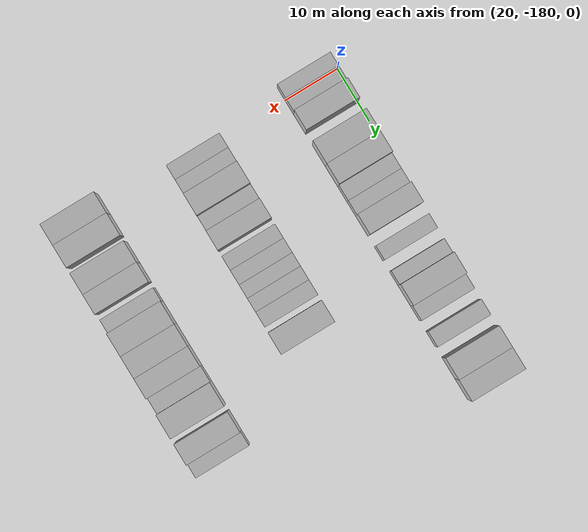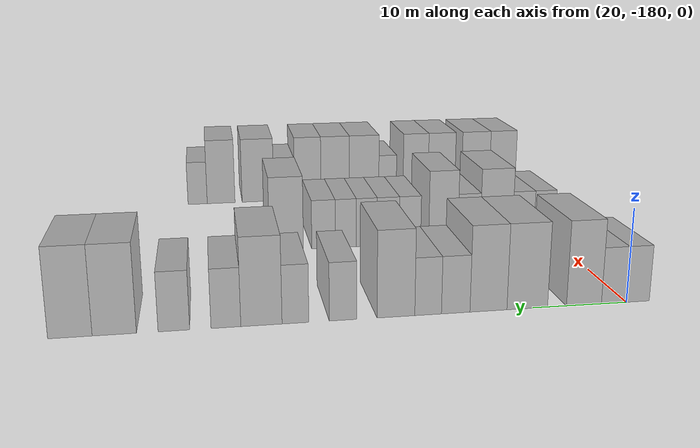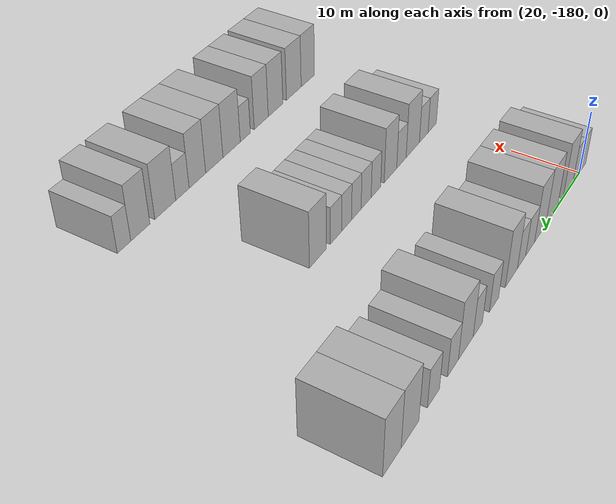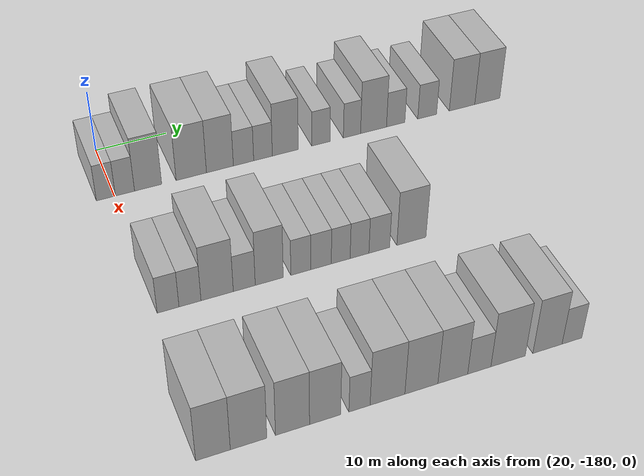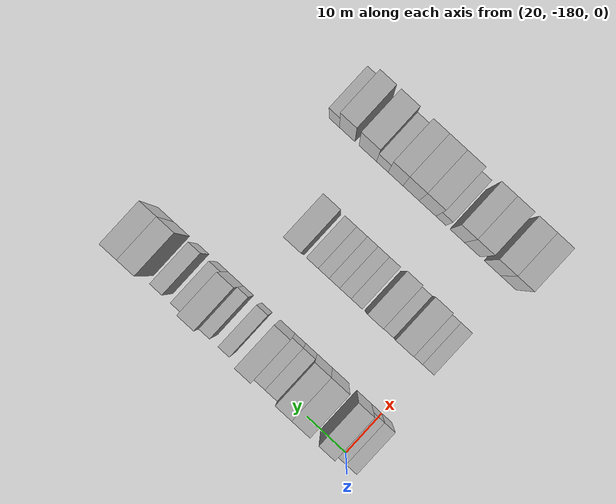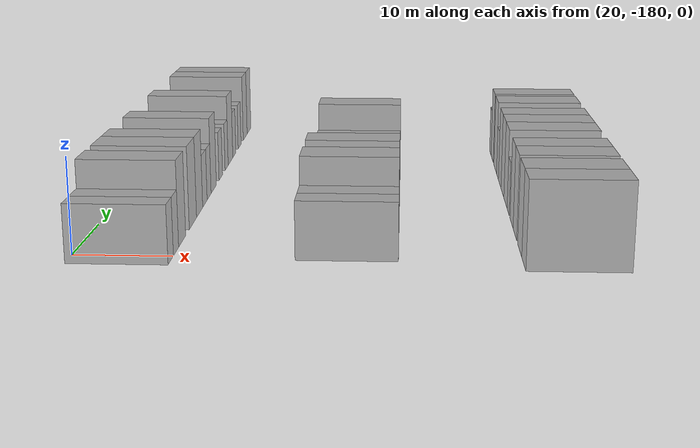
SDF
<sdf version="1.6">
 <world name="default">
  <model name="building_51">
   <static>1</static>
   <pose>25.0000 -181.1678 0 0.000000 0.000000 0.000000</pose>
   <link name="link">
    <pose>0 0 3.00 0 0 0</pose>
    <collision name="collision"><geometry><box><size>10.0000 2.5690 6.0000</size></box></geometry></collision>
    <visual name="visual">
     <cast_shadows>0</cast_shadows>
     <geometry><box><size>10.0000 2.5690 6.0000</size></box></geometry>
     <material>
      <script>
       <uri>model://HANNAS_wall/materials/scripts</uri>
       <uri>model://HANNAS_wall/materials/textures</uri>
       <name>vrc/HANNAS_wall</name>
      </script>
     </material>
    </visual>
   </link>
  </model>
  <model name="building_52">
   <static>1</static>
   <pose>25.0000 -178.5773 0 0.000000 0.000000 0.000000</pose>
   <link name="link">
    <pose>0 0 3.00 0 0 0</pose>
    <collision name="collision"><geometry><box><size>10.0000 2.6120 6.0000</size></box></geometry></collision>
    <visual name="visual">
     <cast_shadows>0</cast_shadows>
     <geometry><box><size>10.0000 2.6120 6.0000</size></box></geometry>
     <material>
      <script>
       <uri>model://HANNAS_wall/materials/scripts</uri>
       <uri>model://HANNAS_wall/materials/textures</uri>
       <name>vrc/HANNAS_wall</name>
      </script>
     </material>
    </visual>
   </link>
  </model>
  <model name="building_53">
   <static>1</static>
   <pose>25.0000 -175.4049 0 0.000000 0.000000 0.000000</pose>
   <link name="link">
    <pose>0 0 4.50 0 0 0</pose>
    <collision name="collision"><geometry><box><size>10.0000 3.7328 9.0000</size></box></geometry></collision>
    <visual name="visual">
     <cast_shadows>0</cast_shadows>
     <geometry><box><size>10.0000 3.7328 9.0000</size></box></geometry>
     <material>
      <script>
       <uri>model://HANNAS_wall/materials/scripts</uri>
       <uri>model://HANNAS_wall/materials/textures</uri>
       <name>vrc/HANNAS_wall</name>
      </script>
     </material>
    </visual>
   </link>
  </model>
  <model name="building_54">
   <static>1</static>
   <pose>25.0000 -169.4101 0 0.000000 0.000000 0.000000</pose>
   <link name="link">
    <pose>0 0 4.50 0 0 0</pose>
    <collision name="collision"><geometry><box><size>10.0000 4.2567 9.0000</size></box></geometry></collision>
    <visual name="visual">
     <cast_shadows>0</cast_shadows>
     <geometry><box><size>10.0000 4.2567 9.0000</size></box></geometry>
     <material>
      <script>
       <uri>model://HANNAS_wall/materials/scripts</uri>
       <uri>model://HANNAS_wall/materials/textures</uri>
       <name>vrc/HANNAS_wall</name>
      </script>
     </material>
    </visual>
   </link>
  </model>
  <model name="building_55">
   <static>1</static>
   <pose>25.0000 -165.3705 0 0.000000 0.000000 0.000000</pose>
   <link name="link">
    <pose>0 0 4.50 0 0 0</pose>
    <collision name="collision"><geometry><box><size>10.0000 3.8225 9.0000</size></box></geometry></collision>
    <visual name="visual">
     <cast_shadows>0</cast_shadows>
     <geometry><box><size>10.0000 3.8225 9.0000</size></box></geometry>
     <material>
      <script>
       <uri>model://HANNAS_wall/materials/scripts</uri>
       <uri>model://HANNAS_wall/materials/textures</uri>
       <name>vrc/HANNAS_wall</name>
      </script>
     </material>
    </visual>
   </link>
  </model>
  <model name="building_56">
   <static>1</static>
   <pose>25.0000 -162.0023 0 0.000000 0.000000 0.000000</pose>
   <link name="link">
    <pose>0 0 3.00 0 0 0</pose>
    <collision name="collision"><geometry><box><size>10.0000 2.9139 6.0000</size></box></geometry></collision>
    <visual name="visual">
     <cast_shadows>0</cast_shadows>
     <geometry><box><size>10.0000 2.9139 6.0000</size></box></geometry>
     <material>
      <script>
       <uri>model://HANNAS_wall/materials/scripts</uri>
       <uri>model://HANNAS_wall/materials/textures</uri>
       <name>vrc/HANNAS_wall</name>
      </script>
     </material>
    </visual>
   </link>
  </model>
  <model name="building_57">
   <static>1</static>
   <pose>25.0000 -159.1965 0 0.000000 0.000000 0.000000</pose>
   <link name="link">
    <pose>0 0 3.00 0 0 0</pose>
    <collision name="collision"><geometry><box><size>10.0000 2.6977 6.0000</size></box></geometry></collision>
    <visual name="visual">
     <cast_shadows>0</cast_shadows>
     <geometry><box><size>10.0000 2.6977 6.0000</size></box></geometry>
     <material>
      <script>
       <uri>model://HANNAS_wall/materials/scripts</uri>
       <uri>model://HANNAS_wall/materials/textures</uri>
       <name>vrc/HANNAS_wall</name>
      </script>
     </material>
    </visual>
   </link>
  </model>
  <model name="building_58">
   <static>1</static>
   <pose>25.0000 -155.9564 0 0.000000 0.000000 0.000000</pose>
   <link name="link">
    <pose>0 0 4.50 0 0 0</pose>
    <collision name="collision"><geometry><box><size>10.0000 3.7825 9.0000</size></box></geometry></collision>
    <visual name="visual">
     <cast_shadows>0</cast_shadows>
     <geometry><box><size>10.0000 3.7825 9.0000</size></box></geometry>
     <material>
      <script>
       <uri>model://HANNAS_wall/materials/scripts</uri>
       <uri>model://HANNAS_wall/materials/textures</uri>
       <name>vrc/HANNAS_wall</name>
      </script>
     </material>
    </visual>
   </link>
  </model>
  <model name="building_59">
   <static>1</static>
   <pose>25.0000 -150.7066 0 0.000000 0.000000 0.000000</pose>
   <link name="link">
    <pose>0 0 3.00 0 0 0</pose>
    <collision name="collision"><geometry><box><size>10.0000 2.7172 6.0000</size></box></geometry></collision>
    <visual name="visual">
     <cast_shadows>0</cast_shadows>
     <geometry><box><size>10.0000 2.7172 6.0000</size></box></geometry>
     <material>
      <script>
       <uri>model://HANNAS_wall/materials/scripts</uri>
       <uri>model://HANNAS_wall/materials/textures</uri>
       <name>vrc/HANNAS_wall</name>
      </script>
     </material>
    </visual>
   </link>
  </model>
  <model name="building_60">
   <static>1</static>
   <pose>25.0000 -146.0507 0 0.000000 0.000000 0.000000</pose>
   <link name="link">
    <pose>0 0 3.00 0 0 0</pose>
    <collision name="collision"><geometry><box><size>10.0000 2.5946 6.0000</size></box></geometry></collision>
    <visual name="visual">
     <cast_shadows>0</cast_shadows>
     <geometry><box><size>10.0000 2.5946 6.0000</size></box></geometry>
     <material>
      <script>
       <uri>model://HANNAS_wall/materials/scripts</uri>
       <uri>model://HANNAS_wall/materials/textures</uri>
       <name>vrc/HANNAS_wall</name>
      </script>
     </material>
    </visual>
   </link>
  </model>
  <model name="building_61">
   <static>1</static>
   <pose>25.0000 -142.7761 0 0.000000 0.000000 0.000000</pose>
   <link name="link">
    <pose>0 0 4.50 0 0 0</pose>
    <collision name="collision"><geometry><box><size>10.0000 3.9547 9.0000</size></box></geometry></collision>
    <visual name="visual">
     <cast_shadows>0</cast_shadows>
     <geometry><box><size>10.0000 3.9547 9.0000</size></box></geometry>
     <material>
      <script>
       <uri>model://HANNAS_wall/materials/scripts</uri>
       <uri>model://HANNAS_wall/materials/textures</uri>
       <name>vrc/HANNAS_wall</name>
      </script>
     </material>
    </visual>
   </link>
  </model>
  <model name="building_62">
   <static>1</static>
   <pose>25.0000 -139.3859 0 0.000000 0.000000 0.000000</pose>
   <link name="link">
    <pose>0 0 3.00 0 0 0</pose>
    <collision name="collision"><geometry><box><size>10.0000 2.8256 6.0000</size></box></geometry></collision>
    <visual name="visual">
     <cast_shadows>0</cast_shadows>
     <geometry><box><size>10.0000 2.8256 6.0000</size></box></geometry>
     <material>
      <script>
       <uri>model://HANNAS_wall/materials/scripts</uri>
       <uri>model://HANNAS_wall/materials/textures</uri>
       <name>vrc/HANNAS_wall</name>
      </script>
     </material>
    </visual>
   </link>
  </model>
  <model name="building_63">
   <static>1</static>
   <pose>25.0000 -134.4988 0 0.000000 0.000000 0.000000</pose>
   <link name="link">
    <pose>0 0 3.00 0 0 0</pose>
    <collision name="collision"><geometry><box><size>10.0000 2.9486 6.0000</size></box></geometry></collision>
    <visual name="visual">
     <cast_shadows>0</cast_shadows>
     <geometry><box><size>10.0000 2.9486 6.0000</size></box></geometry>
     <material>
      <script>
       <uri>model://HANNAS_wall/materials/scripts</uri>
       <uri>model://HANNAS_wall/materials/textures</uri>
       <name>vrc/HANNAS_wall</name>
      </script>
     </material>
    </visual>
   </link>
  </model>
  <model name="building_64">
   <static>1</static>
   <pose>25.0000 -128.9988 0 0.000000 0.000000 0.000000</pose>
   <link name="link">
    <pose>0 0 4.50 0 0 0</pose>
    <collision name="collision"><geometry><box><size>10.0000 4.0515 9.0000</size></box></geometry></collision>
    <visual name="visual">
     <cast_shadows>0</cast_shadows>
     <geometry><box><size>10.0000 4.0515 9.0000</size></box></geometry>
     <material>
      <script>
       <uri>model://HANNAS_wall/materials/scripts</uri>
       <uri>model://HANNAS_wall/materials/textures</uri>
       <name>vrc/HANNAS_wall</name>
      </script>
     </material>
    </visual>
   </link>
  </model>
  <model name="building_65">
   <static>1</static>
   <pose>25.0000 -124.9655 0 0.000000 0.000000 0.000000</pose>
   <link name="link">
    <pose>0 0 4.50 0 0 0</pose>
    <collision name="collision"><geometry><box><size>10.0000 4.0150 9.0000</size></box></geometry></collision>
    <visual name="visual">
     <cast_shadows>0</cast_shadows>
     <geometry><box><size>10.0000 4.0150 9.0000</size></box></geometry>
     <material>
      <script>
       <uri>model://HANNAS_wall/materials/scripts</uri>
       <uri>model://HANNAS_wall/materials/textures</uri>
       <name>vrc/HANNAS_wall</name>
      </script>
     </material>
    </visual>
   </link>
  </model>
  <model name="building_246">
   <static>1</static>
   <pose>47.0000 -179.2460 0 0.000000 0.000000 0.000000</pose>
   <link name="link">
    <pose>0 0 3.00 0 0 0</pose>
    <collision name="collision"><geometry><box><size>10.0000 2.7309 6.0000</size></box></geometry></collision>
    <visual name="visual">
     <cast_shadows>0</cast_shadows>
     <geometry><box><size>10.0000 2.7309 6.0000</size></box></geometry>
     <material>
      <script>
       <uri>model://HANNAS_wall/materials/scripts</uri>
       <uri>model://HANNAS_wall/materials/textures</uri>
       <name>vrc/HANNAS_wall</name>
      </script>
     </material>
    </visual>
   </link>
  </model>
  <model name="building_247">
   <static>1</static>
   <pose>47.0000 -176.4946 0 0.000000 0.000000 0.000000</pose>
   <link name="link">
    <pose>0 0 3.00 0 0 0</pose>
    <collision name="collision"><geometry><box><size>10.0000 2.7718 6.0000</size></box></geometry></collision>
    <visual name="visual">
     <cast_shadows>0</cast_shadows>
     <geometry><box><size>10.0000 2.7718 6.0000</size></box></geometry>
     <material>
      <script>
       <uri>model://HANNAS_wall/materials/scripts</uri>
       <uri>model://HANNAS_wall/materials/textures</uri>
       <name>vrc/HANNAS_wall</name>
      </script>
     </material>
    </visual>
   </link>
  </model>
  <model name="building_248">
   <static>1</static>
   <pose>47.0000 -173.0493 0 0.000000 0.000000 0.000000</pose>
   <link name="link">
    <pose>0 0 4.50 0 0 0</pose>
    <collision name="collision"><geometry><box><size>10.0000 4.1189 9.0000</size></box></geometry></collision>
    <visual name="visual">
     <cast_shadows>0</cast_shadows>
     <geometry><box><size>10.0000 4.1189 9.0000</size></box></geometry>
     <material>
      <script>
       <uri>model://HANNAS_wall/materials/scripts</uri>
       <uri>model://HANNAS_wall/materials/textures</uri>
       <name>vrc/HANNAS_wall</name>
      </script>
     </material>
    </visual>
   </link>
  </model>
  <model name="building_249">
   <static>1</static>
   <pose>47.0000 -169.5716 0 0.000000 0.000000 0.000000</pose>
   <link name="link">
    <pose>0 0 3.00 0 0 0</pose>
    <collision name="collision"><geometry><box><size>10.0000 2.8365 6.0000</size></box></geometry></collision>
    <visual name="visual">
     <cast_shadows>0</cast_shadows>
     <geometry><box><size>10.0000 2.8365 6.0000</size></box></geometry>
     <material>
      <script>
       <uri>model://HANNAS_wall/materials/scripts</uri>
       <uri>model://HANNAS_wall/materials/textures</uri>
       <name>vrc/HANNAS_wall</name>
      </script>
     </material>
    </visual>
   </link>
  </model>
  <model name="building_250">
   <static>1</static>
   <pose>47.0000 -166.3284 0 0.000000 0.000000 0.000000</pose>
   <link name="link">
    <pose>0 0 4.50 0 0 0</pose>
    <collision name="collision"><geometry><box><size>10.0000 3.6499 9.0000</size></box></geometry></collision>
    <visual name="visual">
     <cast_shadows>0</cast_shadows>
     <geometry><box><size>10.0000 3.6499 9.0000</size></box></geometry>
     <material>
      <script>
       <uri>model://HANNAS_wall/materials/scripts</uri>
       <uri>model://HANNAS_wall/materials/textures</uri>
       <name>vrc/HANNAS_wall</name>
      </script>
     </material>
    </visual>
   </link>
  </model>
  <model name="building_251">
   <static>1</static>
   <pose>47.0000 -162.1733 0 0.000000 0.000000 0.000000</pose>
   <link name="link">
    <pose>0 0 3.00 0 0 0</pose>
    <collision name="collision"><geometry><box><size>10.0000 2.6602 6.0000</size></box></geometry></collision>
    <visual name="visual">
     <cast_shadows>0</cast_shadows>
     <geometry><box><size>10.0000 2.6602 6.0000</size></box></geometry>
     <material>
      <script>
       <uri>model://HANNAS_wall/materials/scripts</uri>
       <uri>model://HANNAS_wall/materials/textures</uri>
       <name>vrc/HANNAS_wall</name>
      </script>
     </material>
    </visual>
   </link>
  </model>
  <model name="building_252">
   <static>1</static>
   <pose>47.0000 -159.4795 0 0.000000 0.000000 0.000000</pose>
   <link name="link">
    <pose>0 0 3.00 0 0 0</pose>
    <collision name="collision"><geometry><box><size>10.0000 2.7275 6.0000</size></box></geometry></collision>
    <visual name="visual">
     <cast_shadows>0</cast_shadows>
     <geometry><box><size>10.0000 2.7275 6.0000</size></box></geometry>
     <material>
      <script>
       <uri>model://HANNAS_wall/materials/scripts</uri>
       <uri>model://HANNAS_wall/materials/textures</uri>
       <name>vrc/HANNAS_wall</name>
      </script>
     </material>
    </visual>
   </link>
  </model>
  <model name="building_253">
   <static>1</static>
   <pose>47.0000 -156.8428 0 0.000000 0.000000 0.000000</pose>
   <link name="link">
    <pose>0 0 3.00 0 0 0</pose>
    <collision name="collision"><geometry><box><size>10.0000 2.5459 6.0000</size></box></geometry></collision>
    <visual name="visual">
     <cast_shadows>0</cast_shadows>
     <geometry><box><size>10.0000 2.5459 6.0000</size></box></geometry>
     <material>
      <script>
       <uri>model://HANNAS_wall/materials/scripts</uri>
       <uri>model://HANNAS_wall/materials/textures</uri>
       <name>vrc/HANNAS_wall</name>
      </script>
     </material>
    </visual>
   </link>
  </model>
  <model name="building_254">
   <static>1</static>
   <pose>47.0000 -154.2889 0 0.000000 0.000000 0.000000</pose>
   <link name="link">
    <pose>0 0 3.00 0 0 0</pose>
    <collision name="collision"><geometry><box><size>10.0000 2.5618 6.0000</size></box></geometry></collision>
    <visual name="visual">
     <cast_shadows>0</cast_shadows>
     <geometry><box><size>10.0000 2.5618 6.0000</size></box></geometry>
     <material>
      <script>
       <uri>model://HANNAS_wall/materials/scripts</uri>
       <uri>model://HANNAS_wall/materials/textures</uri>
       <name>vrc/HANNAS_wall</name>
      </script>
     </material>
    </visual>
   </link>
  </model>
  <model name="building_255">
   <static>1</static>
   <pose>47.0000 -151.5843 0 0.000000 0.000000 0.000000</pose>
   <link name="link">
    <pose>0 0 3.00 0 0 0</pose>
    <collision name="collision"><geometry><box><size>10.0000 2.8473 6.0000</size></box></geometry></collision>
    <visual name="visual">
     <cast_shadows>0</cast_shadows>
     <geometry><box><size>10.0000 2.8473 6.0000</size></box></geometry>
     <material>
      <script>
       <uri>model://HANNAS_wall/materials/scripts</uri>
       <uri>model://HANNAS_wall/materials/textures</uri>
       <name>vrc/HANNAS_wall</name>
      </script>
     </material>
    </visual>
   </link>
  </model>
  <model name="building_256">
   <static>1</static>
   <pose>47.0000 -147.1324 0 0.000000 0.000000 0.000000</pose>
   <link name="link">
    <pose>0 0 4.50 0 0 0</pose>
    <collision name="collision"><geometry><box><size>10.0000 4.0565 9.0000</size></box></geometry></collision>
    <visual name="visual">
     <cast_shadows>0</cast_shadows>
     <geometry><box><size>10.0000 4.0565 9.0000</size></box></geometry>
     <material>
      <script>
       <uri>model://HANNAS_wall/materials/scripts</uri>
       <uri>model://HANNAS_wall/materials/textures</uri>
       <name>vrc/HANNAS_wall</name>
      </script>
     </material>
    </visual>
   </link>
  </model>
  <model name="building_426">
   <static>1</static>
   <pose>69.0000 -180.8105 0 0.000000 0.000000 0.000000</pose>
   <link name="link">
    <pose>0 0 4.50 0 0 0</pose>
    <collision name="collision"><geometry><box><size>10.0000 3.9238 9.0000</size></box></geometry></collision>
    <visual name="visual">
     <cast_shadows>0</cast_shadows>
     <geometry><box><size>10.0000 3.9238 9.0000</size></box></geometry>
     <material>
      <script>
       <uri>model://HANNAS_wall/materials/scripts</uri>
       <uri>model://HANNAS_wall/materials/textures</uri>
       <name>vrc/HANNAS_wall</name>
      </script>
     </material>
    </visual>
   </link>
  </model>
  <model name="building_427">
   <static>1</static>
   <pose>69.0000 -176.7491 0 0.000000 0.000000 0.000000</pose>
   <link name="link">
    <pose>0 0 4.50 0 0 0</pose>
    <collision name="collision"><geometry><box><size>10.0000 4.1989 9.0000</size></box></geometry></collision>
    <visual name="visual">
     <cast_shadows>0</cast_shadows>
     <geometry><box><size>10.0000 4.1989 9.0000</size></box></geometry>
     <material>
      <script>
       <uri>model://HANNAS_wall/materials/scripts</uri>
       <uri>model://HANNAS_wall/materials/textures</uri>
       <name>vrc/HANNAS_wall</name>
      </script>
     </material>
    </visual>
   </link>
  </model>
  <model name="building_428">
   <static>1</static>
   <pose>69.0000 -171.6527 0 0.000000 0.000000 0.000000</pose>
   <link name="link">
    <pose>0 0 4.50 0 0 0</pose>
    <collision name="collision"><geometry><box><size>10.0000 3.9939 9.0000</size></box></geometry></collision>
    <visual name="visual">
     <cast_shadows>0</cast_shadows>
     <geometry><box><size>10.0000 3.9939 9.0000</size></box></geometry>
     <material>
      <script>
       <uri>model://HANNAS_wall/materials/scripts</uri>
       <uri>model://HANNAS_wall/materials/textures</uri>
       <name>vrc/HANNAS_wall</name>
      </script>
     </material>
    </visual>
   </link>
  </model>
  <model name="building_429">
   <static>1</static>
   <pose>69.0000 -167.8071 0 0.000000 0.000000 0.000000</pose>
   <link name="link">
    <pose>0 0 4.50 0 0 0</pose>
    <collision name="collision"><geometry><box><size>10.0000 3.6974 9.0000</size></box></geometry></collision>
    <visual name="visual">
     <cast_shadows>0</cast_shadows>
     <geometry><box><size>10.0000 3.6974 9.0000</size></box></geometry>
     <material>
      <script>
       <uri>model://HANNAS_wall/materials/scripts</uri>
       <uri>model://HANNAS_wall/materials/textures</uri>
       <name>vrc/HANNAS_wall</name>
      </script>
     </material>
    </visual>
   </link>
  </model>
  <model name="building_430">
   <static>1</static>
   <pose>69.0000 -163.6756 0 0.000000 0.000000 0.000000</pose>
   <link name="link">
    <pose>0 0 3.00 0 0 0</pose>
    <collision name="collision"><geometry><box><size>10.0000 2.5655 6.0000</size></box></geometry></collision>
    <visual name="visual">
     <cast_shadows>0</cast_shadows>
     <geometry><box><size>10.0000 2.5655 6.0000</size></box></geometry>
     <material>
      <script>
       <uri>model://HANNAS_wall/materials/scripts</uri>
       <uri>model://HANNAS_wall/materials/textures</uri>
       <name>vrc/HANNAS_wall</name>
      </script>
     </material>
    </visual>
   </link>
  </model>
  <model name="building_431">
   <static>1</static>
   <pose>69.0000 -160.2607 0 0.000000 0.000000 0.000000</pose>
   <link name="link">
    <pose>0 0 4.50 0 0 0</pose>
    <collision name="collision"><geometry><box><size>10.0000 4.2644 9.0000</size></box></geometry></collision>
    <visual name="visual">
     <cast_shadows>0</cast_shadows>
     <geometry><box><size>10.0000 4.2644 9.0000</size></box></geometry>
     <material>
      <script>
       <uri>model://HANNAS_wall/materials/scripts</uri>
       <uri>model://HANNAS_wall/materials/textures</uri>
       <name>vrc/HANNAS_wall</name>
      </script>
     </material>
    </visual>
   </link>
  </model>
  <model name="building_432">
   <static>1</static>
   <pose>69.0000 -156.0737 0 0.000000 0.000000 0.000000</pose>
   <link name="link">
    <pose>0 0 4.50 0 0 0</pose>
    <collision name="collision"><geometry><box><size>10.0000 4.1095 9.0000</size></box></geometry></collision>
    <visual name="visual">
     <cast_shadows>0</cast_shadows>
     <geometry><box><size>10.0000 4.1095 9.0000</size></box></geometry>
     <material>
      <script>
       <uri>model://HANNAS_wall/materials/scripts</uri>
       <uri>model://HANNAS_wall/materials/textures</uri>
       <name>vrc/HANNAS_wall</name>
      </script>
     </material>
    </visual>
   </link>
  </model>
  <model name="building_433">
   <static>1</static>
   <pose>69.0000 -152.1332 0 0.000000 0.000000 0.000000</pose>
   <link name="link">
    <pose>0 0 4.50 0 0 0</pose>
    <collision name="collision"><geometry><box><size>10.0000 3.7716 9.0000</size></box></geometry></collision>
    <visual name="visual">
     <cast_shadows>0</cast_shadows>
     <geometry><box><size>10.0000 3.7716 9.0000</size></box></geometry>
     <material>
      <script>
       <uri>model://HANNAS_wall/materials/scripts</uri>
       <uri>model://HANNAS_wall/materials/textures</uri>
       <name>vrc/HANNAS_wall</name>
      </script>
     </material>
    </visual>
   </link>
  </model>
  <model name="building_434">
   <static>1</static>
   <pose>69.0000 -148.7617 0 0.000000 0.000000 0.000000</pose>
   <link name="link">
    <pose>0 0 3.00 0 0 0</pose>
    <collision name="collision"><geometry><box><size>10.0000 2.9715 6.0000</size></box></geometry></collision>
    <visual name="visual">
     <cast_shadows>0</cast_shadows>
     <geometry><box><size>10.0000 2.9715 6.0000</size></box></geometry>
     <material>
      <script>
       <uri>model://HANNAS_wall/materials/scripts</uri>
       <uri>model://HANNAS_wall/materials/textures</uri>
       <name>vrc/HANNAS_wall</name>
      </script>
     </material>
    </visual>
   </link>
  </model>
  <model name="building_435">
   <static>1</static>
   <pose>69.0000 -145.0482 0 0.000000 0.000000 0.000000</pose>
   <link name="link">
    <pose>0 0 4.50 0 0 0</pose>
    <collision name="collision"><geometry><box><size>10.0000 4.4556 9.0000</size></box></geometry></collision>
    <visual name="visual">
     <cast_shadows>0</cast_shadows>
     <geometry><box><size>10.0000 4.4556 9.0000</size></box></geometry>
     <material>
      <script>
       <uri>model://HANNAS_wall/materials/scripts</uri>
       <uri>model://HANNAS_wall/materials/textures</uri>
       <name>vrc/HANNAS_wall</name>
      </script>
     </material>
    </visual>
   </link>
  </model>
  <model name="building_436">
   <static>1</static>
   <pose>69.0000 -139.8866 0 0.000000 0.000000 0.000000</pose>
   <link name="link">
    <pose>0 0 4.50 0 0 0</pose>
    <collision name="collision"><geometry><box><size>10.0000 3.8676 9.0000</size></box></geometry></collision>
    <visual name="visual">
     <cast_shadows>0</cast_shadows>
     <geometry><box><size>10.0000 3.8676 9.0000</size></box></geometry>
     <material>
      <script>
       <uri>model://HANNAS_wall/materials/scripts</uri>
       <uri>model://HANNAS_wall/materials/textures</uri>
       <name>vrc/HANNAS_wall</name>
      </script>
     </material>
    </visual>
   </link>
  </model>
  <model name="building_437">
   <static>1</static>
   <pose>69.0000 -136.6294 0 0.000000 0.000000 0.000000</pose>
   <link name="link">
    <pose>0 0 3.00 0 0 0</pose>
    <collision name="collision"><geometry><box><size>10.0000 2.6468 6.0000</size></box></geometry></collision>
    <visual name="visual">
     <cast_shadows>0</cast_shadows>
     <geometry><box><size>10.0000 2.6468 6.0000</size></box></geometry>
     <material>
      <script>
       <uri>model://HANNAS_wall/materials/scripts</uri>
       <uri>model://HANNAS_wall/materials/textures</uri>
       <name>vrc/HANNAS_wall</name>
      </script>
     </material>
    </visual>
   </link>
  </model>
 </world>
</sdf>
